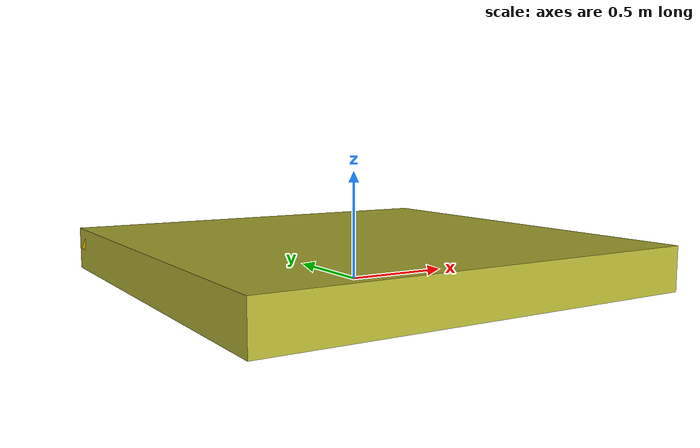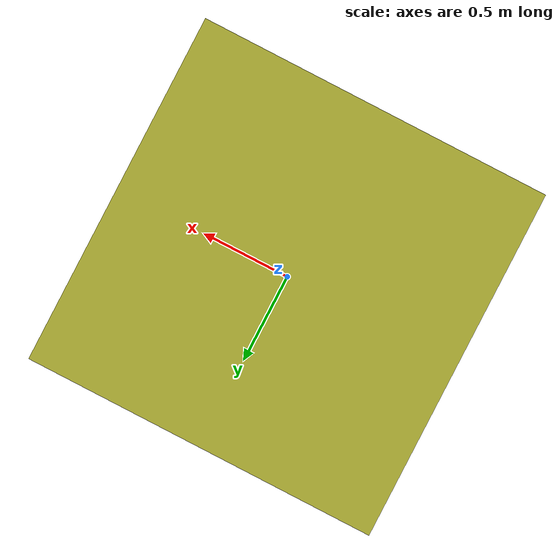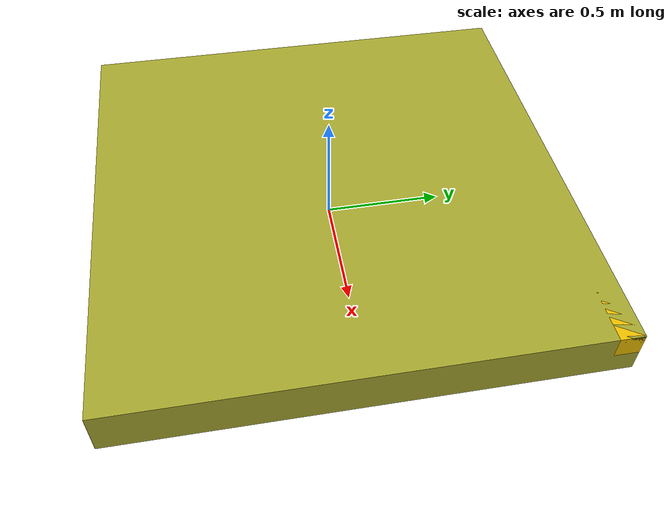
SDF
<?xml version="1.0"?>
<!--
  Loading Dock Model
  Dimensions: 2.0m x 2.0m x 0.2m
-->
<sdf version="1.8">
<model name="loading_dock">
  <static>true</static>
  <link name="dock_platform">
    <pose>0 0 0.1 0 0 0</pose>
    <collision name="collision">
      <geometry><box><size>2.0 2.0 0.2</size></box></geometry>
    </collision>
    <visual name="visual">
      <geometry><box><size>2.0 2.0 0.2</size></box></geometry>
      <material>
        <ambient>0.7 0.7 0.2 1.0</ambient>
        <diffuse>0.7 0.7 0.2 1.0</diffuse>
      </material>
    </visual>
  </link>
  <!-- Dock edge markers -->
  <link name="edge_north">
    <pose>0 0.95 0.15 0 0 0</pose>
    <visual name="visual">
      <geometry><box><size>2.0 0.1 0.1</size></box></geometry>
      <material>
        <ambient>1.0 0.8 0.0 1.0</ambient>
      </material>
    </visual>
  </link>
  <joint name="edge_north_joint" type="fixed">
    <parent>dock_platform</parent>
    <child>edge_north</child>
  </joint>
</model>
</sdf>
